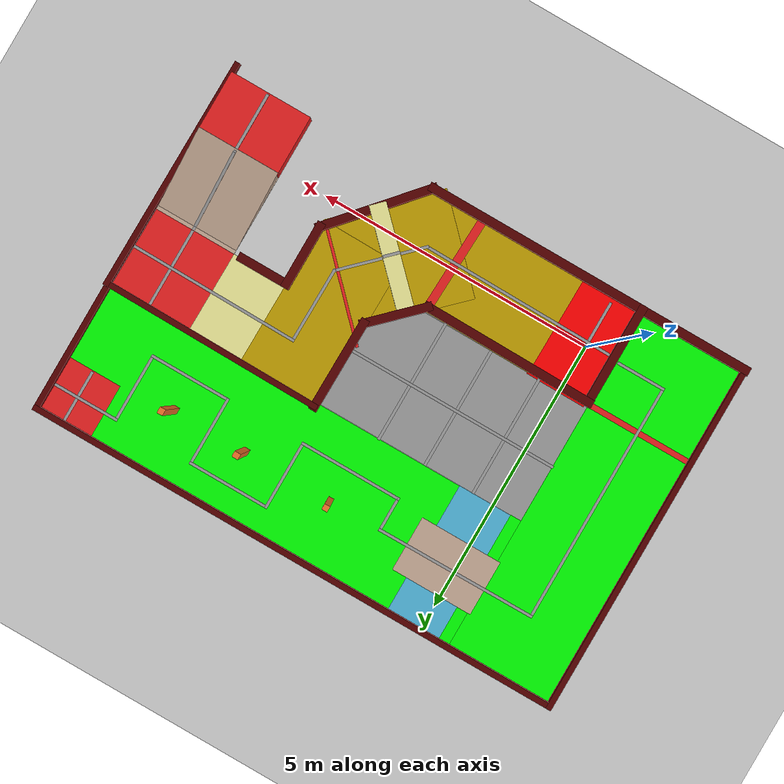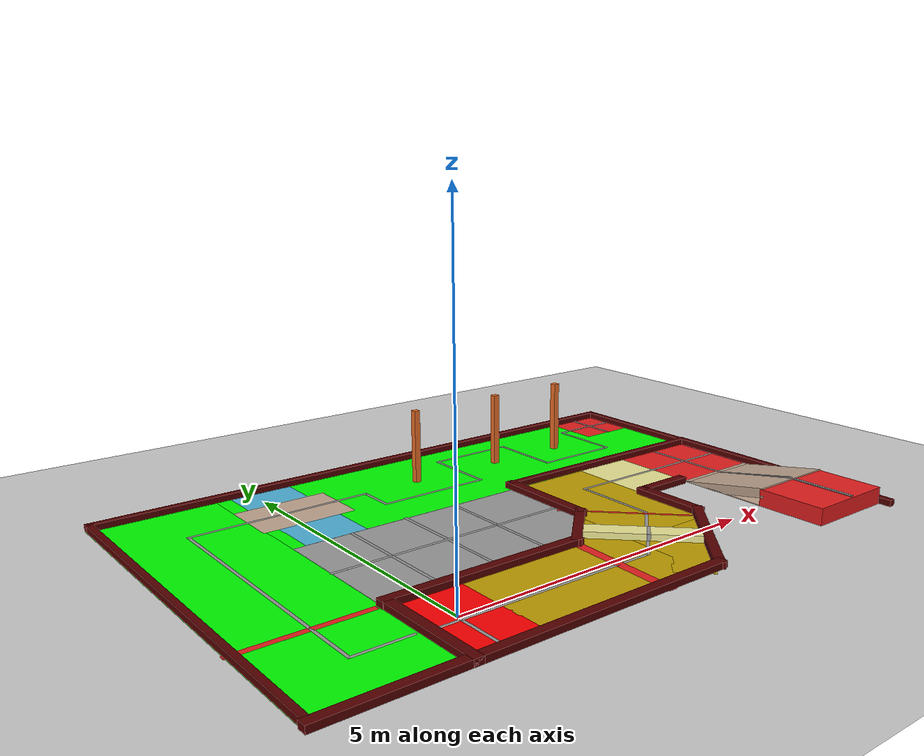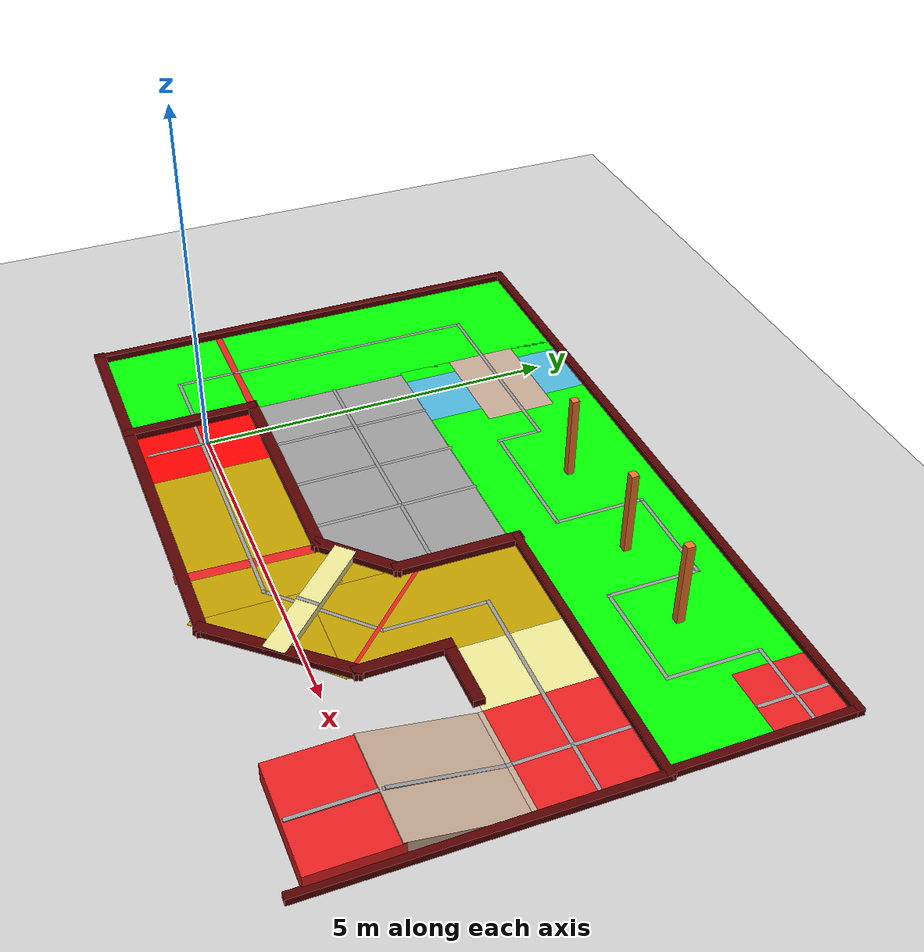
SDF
<sdf version="1.6">
 <world name="default">
  <light name="sun" type="directional">
   <pose>0 0 10 0 -0 0</pose>
   <diffuse>0.8 0.8 0.8 1</diffuse>
   <specular>0.1 0.1 0.1 1</specular>
   <attenuation>
    <range>1000</range>
    <constant>0.9</constant>
    <linear>0.01</linear>
    <quadratic>0.001</quadratic>
   </attenuation>
   <direction>-0.5 0.5 -1</direction>
  </light>
  <model name="ground_plane">
   <static>1</static>
   <link name="link">
    <collision name="collision">
     <geometry><plane><normal>0 0 1</normal><size>100 100</size></plane></geometry>
     <surface><friction><ode><mu>100</mu><mu2>50</mu2></ode></friction></surface>
    </collision>
    <visual name="visual">
     <cast_shadows>0</cast_shadows>
     <geometry><plane><normal>0 0 1</normal><size>100 100</size></plane></geometry>
     <material>
      <script><uri>file://media/materials/scripts/gazebo.material</uri><name>Gazebo/Grey</name></script>
     </material>
    </visual>
   </link>
  </model>
  <gravity>0 0 -9.8</gravity>
  <magnetic_field>6e-06 2.3e-05 -4.2e-05</magnetic_field>
  <atmosphere type="adiabatic"/>
  <physics name="default_physics" default="0" type="ode">
   <max_step_size>0.001</max_step_size>
   <real_time_factor>1</real_time_factor>
   <real_time_update_rate>1000</real_time_update_rate>
  </physics>
  <scene><ambient>0.4 0.4 0.4 1</ambient><background>0.7 0.7 0.7 1</background><shadows>1</shadows></scene>
  <spherical_coordinates>
   <surface_model>EARTH_WGS84</surface_model>
   <latitude_deg>0</latitude_deg>
   <longitude_deg>0</longitude_deg>
   <elevation>0</elevation>
   <heading_deg>0</heading_deg>
  </spherical_coordinates>
  <model name="MR2way">
   <pose>3.42393 1.03579 0 0 0 -1.58007</pose>
   <link name="Wall_0">
    <collision name="Wall_0_Collision">
     <geometry><box><size>4.3 0.1 0.101</size></box></geometry>
     <pose>0 0 0.0505 0 -0 0</pose>
    </collision>
    <visual name="Wall_0_Visual">
     <pose>0 0 0.0505 0 -0 0</pose>
     <geometry><box><size>4.3 0.1 0.101</size></box></geometry>
     <material>
      <script><uri>file://media/materials/scripts/gazebo.material</uri><name>Gazebo/Grey</name></script>
      <ambient>0.333333 0 0 1</ambient>
     </material>
    </visual>
    <pose>0.0125 3.9515 0 0 -0 0</pose>
   </link>
   <link name="Wall_11">
    <collision name="Wall_11_Collision">
     <geometry><box><size>1.45 1 0.001</size></box></geometry>
     <pose>0 0 0.0005 0 -0 0</pose>
    </collision>
    <visual name="Wall_11_Visual">
     <pose>0 0 0.0005 0 -0 0</pose>
     <geometry><box><size>1.45 1 0.001</size></box></geometry>
     <material>
      <script><uri>file://media/materials/scripts/gazebo.material</uri><name>Gazebo/Grey</name></script>
      <ambient>0.917647 0.901961 0.584314 1</ambient>
     </material>
    </visual>
    <pose>-1.3185 1.8985 0 0 -0 0</pose>
   </link>
   <link name="Wall_13">
    <collision name="Wall_13_Collision">
     <geometry><box><size>2.7 1.5 0.001</size></box></geometry>
     <pose>0 0 0.0005 0 -0 0</pose>
    </collision>
    <visual name="Wall_13_Visual">
     <pose>0 0 0.0005 0 -0 0</pose>
     <geometry><box><size>2.7 1.5 0.001</size></box></geometry>
     <material>
      <script><uri>file://media/materials/scripts/gazebo.material</uri><name>Gazebo/Grey</name></script>
      <ambient>0.74902 0.615686 0 1</ambient>
     </material>
    </visual>
    <pose>-0.688656 0.6565 0 0 -0 3.14159</pose>
   </link>
   <link name="Wall_15">
    <collision name="Wall_15_Collision">
     <geometry><box><size>2.12062 1.9 0.001</size></box></geometry>
     <pose>0 0 0.0005 0 -0 0</pose>
    </collision>
    <visual name="Wall_15_Visual">
     <pose>0 0 0.0005 0 -0 0</pose>
     <geometry><box><size>2.12062 1.9 0.001</size></box></geometry>
     <material>
      <script><uri>file://media/materials/scripts/gazebo.material</uri><name>Gazebo/Grey</name></script>
      <ambient>0.74902 0.615686 0 1</ambient>
     </material>
    </visual>
    <pose>0.73611 -0.0095 0 0 0 -0.785398</pose>
   </link>
   <link name="Wall_21">
    <collision name="Wall_21_Collision">
     <geometry><box><size>2.7 1.9 0.001</size></box></geometry>
     <pose>0 0 0.0005 0 -0 0</pose>
    </collision>
    <visual name="Wall_21_Visual">
     <pose>0 0 0.0005 0 -0 0</pose>
     <geometry><box><size>2.7 1.9 0.001</size></box></geometry>
     <material>
      <script><uri>file://media/materials/scripts/gazebo.material</uri><name>Gazebo/Grey</name></script>
      <ambient>0.74902 0.615686 0 1</ambient>
     </material>
    </visual>
    <pose>1.15609 -1.47421 0 0 0 -1.5708</pose>
   </link>
   <link name="Wall_23">
    <collision name="Wall_23_Collision">
     <geometry><box><size>1.9 1.1 0.001</size></box></geometry>
     <pose>0 0 0.0005 0 -0 0</pose>
    </collision>
    <visual name="Wall_23_Visual">
     <pose>0 0 0.0005 0 -0 0</pose>
     <geometry><box><size>1.9 1.1 0.001</size></box></geometry>
     <material>
      <script><uri>file://media/materials/scripts/gazebo.material</uri><name>Gazebo/Grey</name></script>
      <ambient>1 0 0 1</ambient>
     </material>
    </visual>
    <pose>1.1355 -3.3545 0 0 -0 3.14159</pose>
   </link>
   <link name="Wall_26">
    <collision name="Wall_26_Collision">
     <geometry><box><size>1.89948 0.2 0.001</size></box></geometry>
     <pose>0 0 0.0005 0 -0 0</pose>
    </collision>
    <visual name="Wall_26_Visual">
     <pose>0 0 0.0005 0 -0 0</pose>
     <geometry><box><size>1.89948 0.2 0.001</size></box></geometry>
     <material>
      <script><uri>file://media/materials/scripts/gazebo.material</uri><name>Gazebo/Grey</name></script>
      <ambient>0.917647 0.980392 0.584314 1</ambient>
     </material>
    </visual>
    <pose>0.658481 0.09087 0 0 -0 0.785398</pose>
   </link>
   <link name="Wall_28">
    <collision name="Wall_28_Collision">
     <geometry><box><size>3.15 0.05 0.0012</size></box></geometry>
     <pose>0 0 0.0005 0 -0 0</pose>
    </collision>
    <visual name="Wall_28_Visual">
     <pose>0 0 0.0005 0 -0 0</pose>
     <geometry><box><size>3.15 0.05 0.0012</size></box></geometry>
     <material>
      <script><uri>file://media/materials/scripts/gazebo.material</uri><name>Gazebo/Grey</name></script>
      <ambient>1 1 1 1</ambient>
     </material>
    </visual>
    <pose>-1.3295 2.3745 0 0 0 -1.5708</pose>
   </link>
   <link name="Wall_30">
    <collision name="Wall_30_Collision">
     <geometry><box><size>1.4 0.05 0.0011</size></box></geometry>
     <pose>0 0 0.0005 0 -0 0</pose>
    </collision>
    <visual name="Wall_30_Visual">
     <pose>0 0 0.0005 0 -0 0</pose>
     <geometry><box><size>1.4 0.05 0.0011</size></box></geometry>
     <material>
      <script><uri>file://media/materials/scripts/gazebo.material</uri><name>Gazebo/Grey</name></script>
      <ambient>1 1 1 1</ambient>
     </material>
    </visual>
    <pose>-0.6545 0.8245 0 0 -0 0</pose>
   </link>
   <link name="Wall_31">
    <collision name="Wall_31_Collision">
     <geometry><box><size>1.65 0.05 0.0011</size></box></geometry>
     <pose>0 0 0.0005 0 -0 0</pose>
    </collision>
    <visual name="Wall_31_Visual">
     <pose>0 0 0.0005 0 -0 0</pose>
     <geometry><box><size>1.65 0.05 0.0011</size></box></geometry>
     <material>
      <script><uri>file://media/materials/scripts/gazebo.material</uri><name>Gazebo/Grey</name></script>
      <ambient>1 1 1 1</ambient>
     </material>
    </visual>
    <pose>0.586 0.259 0 0 0 -0.785398</pose>
   </link>
   <link name="Wall_32">
    <collision name="Wall_32_Collision">
     <geometry><box><size>3.65 0.05 0.0011</size></box></geometry>
     <pose>0 0 0.0005 0 -0 0</pose>
    </collision>
    <visual name="Wall_32_Visual">
     <pose>0 0 0.0005 0 -0 0</pose>
     <geometry><box><size>3.65 0.05 0.0011</size></box></geometry>
     <material>
      <script><uri>file://media/materials/scripts/gazebo.material</uri><name>Gazebo/Grey</name></script>
      <ambient>1 1 1 1</ambient>
     </material>
    </visual>
    <pose>1.1515 -2.1065 0 0 0 -1.5708</pose>
   </link>
   <link name="Wall_34">
    <collision name="Wall_34_Collision">
     <geometry><box><size>2.15 0.05 0.0011</size></box></geometry>
     <pose>0 0 0.0005 0 -0 0</pose>
    </collision>
    <visual name="Wall_34_Visual">
     <pose>0 0 0.0005 0 -0 0</pose>
     <geometry><box><size>2.15 0.05 0.0011</size></box></geometry>
     <material>
      <script><uri>file://media/materials/scripts/gazebo.material</uri><name>Gazebo/Grey</name></script>
      <ambient>0.901961 0.121569 0.121569 1</ambient>
     </material>
    </visual>
    <pose>-0.124 0.602 0 0 -0 0.785398</pose>
   </link>
   <link name="Wall_37">
    <collision name="Wall_37_Collision">
     <geometry><box><size>1.91295 0.15 0.0011</size></box></geometry>
     <pose>0 0 0.0005 0 -0 0</pose>
    </collision>
    <visual name="Wall_37_Visual">
     <pose>0 0 0.0005 0 -0 0</pose>
     <geometry><box><size>1.91295 0.15 0.0011</size></box></geometry>
     <material>
      <script><uri>file://media/materials/scripts/gazebo.material</uri><name>Gazebo/Grey</name></script>
      <ambient>0.901961 0.121569 0.121569 1</ambient>
     </material>
    </visual>
    <pose>1.1715 -0.8525 0 0 0 -0.029503</pose>
   </link>
   <link name="Wall_39">
    <collision name="Wall_39_Collision">
     <geometry><box><size>1.75 0.15 0.1</size></box></geometry>
     <pose>0 0 0.05 0 -0 0</pose>
    </collision>
    <visual name="Wall_39_Visual">
     <pose>0 0 0.05 0 -0 0</pose>
     <geometry><box><size>1.75 0.15 0.1</size></box></geometry>
     <material>
      <script><uri>file://media/materials/scripts/gazebo.material</uri><name>Gazebo/Grey</name></script>
      <ambient>0.333333 0 0 1</ambient>
     </material>
    </visual>
    <pose>-1.2875 -0.0485 0 0 -0 0</pose>
   </link>
   <link name="Wall_40">
    <collision name="Wall_40_Collision">
     <geometry><box><size>1.25 0.15 0.1</size></box></geometry>
     <pose>0 0 0.05 0 -0 0</pose>
    </collision>
    <visual name="Wall_40_Visual">
     <pose>0 0 0.05 0 -0 0</pose>
     <geometry><box><size>1.25 0.15 0.1</size></box></geometry>
     <material>
      <script><uri>file://media/materials/scripts/gazebo.material</uri><name>Gazebo/Grey</name></script>
      <ambient>0.333333 0 0 1</ambient>
     </material>
    </visual>
    <pose>-0.0985 -0.4375 0 0 0 -0.785398</pose>
   </link>
   <link name="Wall_41">
    <collision name="Wall_41_Collision">
     <geometry><box><size>3.25 0.15 0.1</size></box></geometry>
     <pose>0 0 0.05 0 -0 0</pose>
    </collision>
    <visual name="Wall_41_Visual">
     <pose>0 0 0.05 0 -0 0</pose>
     <geometry><box><size>3.25 0.15 0.1</size></box></geometry>
     <material>
      <script><uri>file://media/materials/scripts/gazebo.material</uri><name>Gazebo/Grey</name></script>
      <ambient>0.333333 0 0 1</ambient>
     </material>
    </visual>
    <pose>0.2905 -2.3765 0 0 0 -1.5708</pose>
   </link>
   <link name="Wall_5">
    <collision name="Wall_5_Collision">
     <geometry><box><size>4.1 0.1 0.101</size></box></geometry>
     <pose>0 0 0.0505 0 -0 0</pose>
    </collision>
    <visual name="Wall_5_Visual">
     <pose>0 0 0.0505 0 -0 0</pose>
     <geometry><box><size>4.1 0.1 0.101</size></box></geometry>
     <material>
      <script><uri>file://media/materials/scripts/gazebo.material</uri><name>Gazebo/Grey</name></script>
      <ambient>0.333333 0 0 1</ambient>
     </material>
    </visual>
    <pose>-2.0875 1.9515 0 0 0 -1.5708</pose>
   </link>
   <link name="Wall_9">
    <collision name="Wall_9_Collision">
     <geometry><box><size>1.5 1.45 0.001</size></box></geometry>
     <pose>0 0 0.0005 0 -0 0</pose>
    </collision>
    <visual name="Wall_9_Visual">
     <pose>0 0 0.0005 0 -0 0</pose>
     <geometry><box><size>1.5 1.45 0.001</size></box></geometry>
     <material>
      <script><uri>file://media/materials/scripts/gazebo.material</uri><name>Gazebo/Grey</name></script>
      <ambient>0.901961 0.121569 0.121569 1</ambient>
     </material>
    </visual>
    <pose>-1.3235 3.1435 0 0 -0 1.5708</pose>
   </link>
   <static>1</static>
  </model>
  <model name="MR2area">
   <pose>3.06069 1.00816 0 0 -0 0</pose>
   <link name="Wall_0">
    <collision name="Wall_0_Collision">
     <geometry><box><size>1.9 0.15 0.1</size></box></geometry>
     <pose>0 0 0.05 0 -0 0</pose>
    </collision>
    <visual name="Wall_0_Visual">
     <pose>0 0 0.05 0 -0 0</pose>
     <geometry><box><size>1.9 0.15 0.1</size></box></geometry>
     <material>
      <script><uri>file://media/materials/scripts/gazebo.material</uri><name>Gazebo/Grey</name></script>
      <ambient>0.333333 0 0 1</ambient>
     </material>
    </visual>
    <pose>-3.55775 -1.12559 0 0 0 -1.5708</pose>
   </link>
   <link name="Wall_12">
    <collision name="Wall_12_Collision">
     <geometry><box><size>1.249 0.15 0.1</size></box></geometry>
     <pose>0 0 0.05 0 -0 0</pose>
    </collision>
    <visual name="Wall_12_Visual">
     <pose>0 0 0.05 0 -0 0</pose>
     <geometry><box><size>1.249 0.15 0.1</size></box></geometry>
     <material>
      <script><uri>file://media/materials/scripts/gazebo.material</uri><name>Gazebo/Grey</name></script>
      <ambient>0.333333 0 0 1</ambient>
     </material>
    </visual>
    <pose>1.75425 0.045913 0 0 -0 1.5708</pose>
   </link>
   <link name="Wall_13">
    <collision name="Wall_13_Collision">
     <geometry><box><size>1 0.15 0.1</size></box></geometry>
     <pose>0 0 0.05 0 -0 0</pose>
    </collision>
    <visual name="Wall_13_Visual">
     <pose>0 0 0.05 0 -0 0</pose>
     <geometry><box><size>1 0.15 0.1</size></box></geometry>
     <material>
      <script><uri>file://media/materials/scripts/gazebo.material</uri><name>Gazebo/Grey</name></script>
      <ambient>0.333333 0 0 1</ambient>
     </material>
    </visual>
    <pose>2.17925 0.595413 0 0 -0 0</pose>
   </link>
   <link name="Wall_15">
    <collision name="Wall_15_Collision">
     <geometry><box><size>0.3 0.05 0.1</size></box></geometry>
     <pose>0 0 0.052 0 -0 0</pose>
    </collision>
    <visual name="Wall_15_Visual">
     <pose>0 0 0.052 0 -0 0</pose>
     <geometry><box><size>0.3 0.05 0.1</size></box></geometry>
     <material>
      <script><uri>file://media/materials/scripts/gazebo.material</uri><name>Gazebo/Grey</name></script>
      <ambient>1 1 1 1</ambient>
     </material>
    </visual>
    <pose>0.492717 -0.70112 0 0 0 -2.35619</pose>
   </link>
   <link name="Wall_17">
    <collision name="Wall_17_Collision">
     <geometry><box><size>1.5 0.05 0.0011</size></box></geometry>
     <pose>0 0 0.0005 0 -0 0</pose>
    </collision>
    <visual name="Wall_17_Visual">
     <pose>0 0 0.0005 0 -0 0</pose>
     <geometry><box><size>1.5 0.05 0.0011</size></box></geometry>
     <material>
      <script><uri>file://media/materials/scripts/gazebo.material</uri><name>Gazebo/Grey</name></script>
      <ambient>1 1 1 1</ambient>
     </material>
    </visual>
    <pose>-3.06575 -1.10459 0 0 0 -1.5708</pose>
   </link>
   <link name="Wall_19">
    <collision name="Wall_19_Collision">
     <geometry><box><size>1.5 0.05 0.0012</size></box></geometry>
     <pose>0 0 0.0005 0 -0 0</pose>
    </collision>
    <visual name="Wall_19_Visual">
     <pose>0 0 0.0005 0 -0 0</pose>
     <geometry><box><size>1.5 0.05 0.0012</size></box></geometry>
     <material>
      <script><uri>file://media/materials/scripts/gazebo.material</uri><name>Gazebo/Grey</name></script>
      <ambient>1 1 1 1</ambient>
     </material>
    </visual>
    <pose>3.55775 1.35641 0 0 0 -1.5708</pose>
   </link>
   <link name="Wall_2">
    <collision name="Wall_2_Collision">
     <geometry><box><size>1.9 0.3 0.1</size></box></geometry>
     <pose>0 0 0.05 0 -0 0</pose>
    </collision>
    <visual name="Wall_2_Visual">
     <pose>0 0 0.05 0 -0 0</pose>
     <geometry><box><size>1.9 0.3 0.1</size></box></geometry>
     <material>
      <script><uri>file://media/materials/scripts/gazebo.material</uri><name>Gazebo/Grey</name></script>
      <ambient>0.917647 0.901961 0.584314 1</ambient>
     </material>
    </visual>
    <pose>0.447935 -0.646272 0 0 0 -0.785398</pose>
   </link>
   <link name="Wall_4">
    <collision name="Wall_4_Collision">
     <geometry><box><size>4.154 0.15 0.1</size></box></geometry>
     <pose>0 0 0.05 0 -0 0</pose>
    </collision>
    <visual name="Wall_4_Visual">
     <pose>0 0 0.05 0 -0 0</pose>
     <geometry><box><size>4.154 0.15 0.1</size></box></geometry>
     <material>
      <script><uri>file://media/materials/scripts/gazebo.material</uri><name>Gazebo/Grey</name></script>
      <ambient>0.333333 0 0 1</ambient>
     </material>
    </visual>
    <pose>-1.55575 -2.00059 0 0 -0 0</pose>
   </link>
   <link name="Wall_5">
    <collision name="Wall_5_Collision">
     <geometry><box><size>2.13793 0.15 0.1</size></box></geometry>
     <pose>0 0 0.05 0 -0 0</pose>
    </collision>
    <visual name="Wall_5_Visual">
     <pose>0 0 0.05 0 -0 0</pose>
     <geometry><box><size>2.13793 0.15 0.1</size></box></geometry>
     <material>
      <script><uri>file://media/materials/scripts/gazebo.material</uri><name>Gazebo/Grey</name></script>
      <ambient>0.333333 0 0 1</ambient>
     </material>
    </visual>
    <pose>1.10025 -1.25209 0 0 -0 0.852676</pose>
   </link>
   <static>1</static>
  </model>
  <model name="mountion">
   <pose>7.32704 0.333271 0.058375 0.00209 -1.57064 -0.002094</pose>
   <link name="Wall_42">
    <collision name="Wall_42_Collision">
     <geometry><box><size>1.099 0.4 1.5</size></box></geometry>
     <pose>0 0 0.75 0 -0 0</pose>
    </collision>
    <visual name="Wall_42_Visual">
     <pose>0 0 0.75 0 -0 0</pose>
     <geometry><box><size>1.099 0.4 1.5</size></box></geometry>
     <material>
      <script><uri>file://media/materials/scripts/gazebo.material</uri><name>Gazebo/Grey</name></script>
      <ambient>0.901961 0.121569 0.121569 1</ambient>
     </material>
    </visual>
    <pose>-0.0035 -0.740259 0 0 0 -1.5708</pose>
   </link>
   <link name="Wall_49">
    <collision name="Wall_49_Collision">
     <geometry><box><size>1.49989 0.15 1.5</size></box></geometry>
     <pose>0 0 0.75 0 -0 0</pose>
    </collision>
    <visual name="Wall_49_Visual">
     <pose>0 0 0.75 0 -0 0</pose>
     <geometry><box><size>1.49989 0.15 1.5</size></box></geometry>
     <material>
      <script><uri>file://media/materials/scripts/gazebo.material</uri><name>Gazebo/Grey</name></script>
      <ambient>0.756863 0.65098 0.568627 1</ambient>
     </material>
    </visual>
    <pose>-0.1325 0.527241 0 0 0 -1.57672</pose>
   </link>
   <link name="Wall_52">
    <collision name="Wall_52_Collision">
     <geometry><box><size>1.54685 0.15 1.5</size></box></geometry>
     <pose>0 0 0.75 0 -0 0</pose>
    </collision>
    <visual name="Wall_52_Visual">
     <pose>0 0 0.75 0 -0 0</pose>
     <geometry><box><size>1.54685 0.15 1.5</size></box></geometry>
     <material>
      <script><uri>file://media/materials/scripts/gazebo.material</uri><name>Gazebo/Grey</name></script>
      <ambient>0.756863 0.65098 0.568627 1</ambient>
     </material>
    </visual>
    <pose>0 0.515741 0 0 -0 1.75584</pose>
   </link>
   <static>1</static>
  </model>
  <model name="MR1area">
   <pose>2.43102 2.228 0 0 -0 0</pose>
   <link name="Wall_0">
    <collision name="Wall_0_Collision">
     <geometry><box><size>2 0.15 0.1</size></box></geometry>
     <pose>0 0 0.05 0 -0 0</pose>
    </collision>
    <visual name="Wall_0_Visual">
     <pose>0 0 0.05 0 -0 0</pose>
     <geometry><box><size>2 0.15 0.1</size></box></geometry>
     <material>
      <script><uri>file://media/materials/scripts/gazebo.material</uri><name>Gazebo/Grey</name></script>
      <ambient>0.333333 0 0 1</ambient>
     </material>
    </visual>
    <pose>-3.98602 -3.218 0 0 -0 0</pose>
   </link>
   <link name="Wall_10">
    <collision name="Wall_10_Collision">
     <geometry><box><size>6.561 0.1 0.1</size></box></geometry>
     <pose>0 0 0.05 0 -0 0</pose>
    </collision>
    <visual name="Wall_10_Visual">
     <pose>0 0 0.05 0 -0 0</pose>
     <geometry><box><size>6.561 0.1 0.1</size></box></geometry>
     <material>
      <script><uri>file://media/materials/scripts/gazebo.material</uri><name>Gazebo/Grey</name></script>
      <ambient>0.333333 0 0 1</ambient>
     </material>
    </visual>
    <pose>-4.91102 0.0125 0 0 -0 1.5708</pose>
   </link>
   <link name="Wall_12">
    <collision name="Wall_12_Collision">
     <geometry><box><size>9.94706 0.1 0.1</size></box></geometry>
     <pose>0 0 0.05 0 -0 0</pose>
    </collision>
    <visual name="Wall_12_Visual">
     <pose>0 0 0.05 0 -0 0</pose>
     <geometry><box><size>9.94706 0.1 0.1</size></box></geometry>
     <material>
      <script><uri>file://media/materials/scripts/gazebo.material</uri><name>Gazebo/Grey</name></script>
      <ambient>0.333333 0 0 1</ambient>
     </material>
    </visual>
    <pose>0.012484 3.243 0 0 -0 0</pose>
   </link>
   <link name="Wall_13">
    <collision name="Wall_13_Collision">
     <geometry><box><size>2.379 0.1 0.1</size></box></geometry>
     <pose>0 0 0.05 0 -0 0</pose>
    </collision>
    <visual name="Wall_13_Visual">
     <pose>0 0 0.05 0 -0 0</pose>
     <geometry><box><size>2.379 0.1 0.1</size></box></geometry>
     <material>
      <script><uri>file://media/materials/scripts/gazebo.material</uri><name>Gazebo/Grey</name></script>
      <ambient>0.333333 0 0 1</ambient>
     </material>
    </visual>
    <pose>4.93598 2.1035 0 0 0 -1.5708</pose>
   </link>
   <link name="Wall_15">
    <collision name="Wall_15_Collision">
     <geometry><box><size>1.5 1 0.0011</size></box></geometry>
     <pose>0 0 0.0005 0 -0 0</pose>
    </collision>
    <visual name="Wall_15_Visual">
     <pose>0 0 0.0005 0 -0 0</pose>
     <geometry><box><size>1.5 1 0.0011</size></box></geometry>
     <material>
      <script><uri>file://media/materials/scripts/gazebo.material</uri><name>Gazebo/Grey</name></script>
      <ambient>0.756863 0.65098 0.568627 1</ambient>
     </material>
    </visual>
    <pose>-2.2686 2.09358 0 0 -0 3.14159</pose>
   </link>
   <link name="Wall_17">
    <collision name="Wall_17_Collision">
     <geometry><box><size>0.9 0.05 0.0011</size></box></geometry>
     <pose>0 0 0.0005 0 -0 0</pose>
    </collision>
    <visual name="Wall_17_Visual">
     <pose>0 0 0.0005 0 -0 0</pose>
     <geometry><box><size>0.9 0.05 0.0011</size></box></geometry>
     <material>
      <script><uri>file://media/materials/scripts/gazebo.material</uri><name>Gazebo/Grey</name></script>
      <ambient>1 1 1 1</ambient>
     </material>
    </visual>
    <pose>-3.48402 -2.267 0 0 -0 3.14159</pose>
   </link>
   <link name="Wall_19">
    <collision name="Wall_19_Collision">
     <geometry><box><size>4.427 0.05 0.0011</size></box></geometry>
     <pose>0 0 0.0005 0 -0 0</pose>
    </collision>
    <visual name="Wall_19_Visual">
     <pose>0 0 0.0005 0 -0 0</pose>
     <geometry><box><size>4.427 0.05 0.0011</size></box></geometry>
     <material>
      <script><uri>file://media/materials/scripts/gazebo.material</uri><name>Gazebo/Grey</name></script>
      <ambient>1 1 1 1</ambient>
     </material>
    </visual>
    <pose>-3.90902 -0.0785 0 0 -0 1.5708</pose>
   </link>
   <link name="Wall_2">
    <collision name="Wall_2_Collision">
     <geometry><box><size>6.45 2 0.001</size></box></geometry>
     <pose>0 0 0.0005 0 -0 0</pose>
    </collision>
    <visual name="Wall_2_Visual">
     <pose>0 0 0.0005 0 -0 0</pose>
     <geometry><box><size>6.45 2 0.001</size></box></geometry>
     <material>
      <script><uri>file://media/materials/scripts/gazebo.material</uri><name>Gazebo/Grey</name></script>
      <ambient>0 1 0 1</ambient>
     </material>
    </visual>
    <pose>-3.96546 0.022888 0 0 -0 1.5708</pose>
   </link>
   <link name="Wall_20">
    <collision name="Wall_20_Collision">
     <geometry><box><size>2.9407 0.05 0.00115</size></box></geometry>
     <pose>0 0 0.0005 0 -0 0</pose>
    </collision>
    <visual name="Wall_20_Visual">
     <pose>0 0 0.0005 0 -0 0</pose>
     <geometry><box><size>2.9407 0.05 0.00115</size></box></geometry>
     <material>
      <script><uri>file://media/materials/scripts/gazebo.material</uri><name>Gazebo/Grey</name></script>
      <ambient>1 1 1 1</ambient>
     </material>
    </visual>
    <pose>-2.46052 2.12 0 0 -0 0.006904</pose>
   </link>
   <link name="Wall_22">
    <collision name="Wall_22_Collision">
     <geometry><box><size>0.1 0.1 1.2</size></box></geometry>
     <pose>0 0 0.6 0 -0 0</pose>
    </collision>
    <visual name="Wall_22_Visual">
     <pose>0 0 0.6 0 -0 0</pose>
     <geometry><box><size>0.1 0.1 1.2</size></box></geometry>
     <material>
      <script><uri>file://media/materials/scripts/gazebo.material</uri><name>Gazebo/Grey</name></script>
      <ambient>0.941176 0.447059 0.160784 1</ambient>
     </material>
    </visual>
    <pose>-0.045016 2.121 0 0 -0 0</pose>
   </link>
   <link name="Wall_4">
    <collision name="Wall_4_Collision">
     <geometry><box><size>6.6997 2.45 0.001</size></box></geometry>
     <pose>0 0 0.0005 0 -0 0</pose>
    </collision>
    <visual name="Wall_4_Visual">
     <pose>0 0 0.0005 0 -0 0</pose>
     <geometry><box><size>6.6997 2.45 0.001</size></box></geometry>
     <material>
      <script><uri>file://media/materials/scripts/gazebo.material</uri><name>Gazebo/Grey</name></script>
      <ambient>0 1 0 1</ambient>
     </material>
    </visual>
    <pose>1.56098 2.055 0 0 -0 0</pose>
   </link>
   <link name="Wall_50">
    <collision name="Wall_50_Collision">
     <geometry><box><size>0.11 0.1 1.2</size></box></geometry>
     <pose>0 0 0.6 0 -0 0</pose>
    </collision>
    <visual name="Wall_50_Visual">
     <pose>0 0 0.6 0 -0 0</pose>
     <geometry><box><size>0.11 0.1 1.2</size></box></geometry>
     <material>
      <script><uri>file://media/materials/scripts/gazebo.material</uri><name>Gazebo/Grey</name></script>
      <ambient>0.941176 0.447059 0.160784 1</ambient>
     </material>
    </visual>
    <pose>2.93598 2.108 0 0 -0 1.5708</pose>
   </link>
   <link name="Wall_52">
    <collision name="Wall_52_Collision">
     <geometry><box><size>0.11 0.1 1.2</size></box></geometry>
     <pose>0 0 0.6 0 -0 0</pose>
    </collision>
    <visual name="Wall_52_Visual">
     <pose>0 0 0.6 0 -0 0</pose>
     <geometry><box><size>0.11 0.1 1.2</size></box></geometry>
     <material>
      <script><uri>file://media/materials/scripts/gazebo.material</uri><name>Gazebo/Grey</name></script>
      <ambient>0.941176 0.447059 0.160784 1</ambient>
     </material>
    </visual>
    <pose>1.57698 2.115 0 0 -0 0</pose>
   </link>
   <link name="Wall_54">
    <collision name="Wall_54_Collision">
     <geometry><box><size>1.96 0.1 0.0011</size></box></geometry>
     <pose>0 0 0.0005 0 -0 0</pose>
    </collision>
    <visual name="Wall_54_Visual">
     <pose>0 0 0.0005 0 -0 0</pose>
     <geometry><box><size>1.96 0.1 0.0011</size></box></geometry>
     <material>
      <script><uri>file://media/materials/scripts/gazebo.material</uri><name>Gazebo/Grey</name></script>
      <ambient>0.901961 0.121569 0.121569 1</ambient>
     </material>
    </visual>
    <pose>-4.00402 -1.426 0 0 -0 3.14159</pose>
   </link>
   <link name="Wall_56">
    <collision name="Wall_56_Collision">
     <geometry><box><size>0.65 0.05 0.0011</size></box></geometry>
     <pose>0 0 0.0005 0 -0 0</pose>
    </collision>
    <visual name="Wall_56_Visual">
     <pose>0 0 0.0005 0 -0 0</pose>
     <geometry><box><size>0.65 0.05 0.0011</size></box></geometry>
     <material>
      <script><uri>file://media/materials/scripts/gazebo.material</uri><name>Gazebo/Grey</name></script>
      <ambient>1 1 1 1</ambient>
     </material>
    </visual>
    <pose>-1.01202 1.83 0 0 0 -1.5708</pose>
   </link>
   <link name="Wall_57">
    <collision name="Wall_57_Collision">
     <geometry><box><size>1.88011 0.05 0.0011</size></box></geometry>
     <pose>0 0 0.0005 0 -0 0</pose>
    </collision>
    <visual name="Wall_57_Visual">
     <pose>0 0 0.0005 0 -0 0</pose>
     <geometry><box><size>1.88011 0.05 0.0011</size></box></geometry>
     <material>
      <script><uri>file://media/materials/scripts/gazebo.material</uri><name>Gazebo/Grey</name></script>
      <ambient>1 1 1 1</ambient>
     </material>
    </visual>
    <pose>-0.097016 1.53 0 0 -0 0</pose>
   </link>
   <link name="Wall_58">
    <collision name="Wall_58_Collision">
     <geometry><box><size>1.27254 0.05 0.0011</size></box></geometry>
     <pose>0 0 0.0005 0 -0 0</pose>
    </collision>
    <visual name="Wall_58_Visual">
     <pose>0 0 0.0005 0 -0 0</pose>
     <geometry><box><size>1.27254 0.05 0.0011</size></box></geometry>
     <material>
      <script><uri>file://media/materials/scripts/gazebo.material</uri><name>Gazebo/Grey</name></script>
      <ambient>1 1 1 1</ambient>
     </material>
    </visual>
    <pose>0.817984 2.1415 0 0 -0 1.5708</pose>
   </link>
   <link name="Wall_59">
    <collision name="Wall_59_Collision">
     <geometry><box><size>1.502 0.05 0.0011</size></box></geometry>
     <pose>0 0 0.0005 0 -0 0</pose>
    </collision>
    <visual name="Wall_59_Visual">
     <pose>0 0 0.0005 0 -0 0</pose>
     <geometry><box><size>1.502 0.05 0.0011</size></box></geometry>
     <material>
      <script><uri>file://media/materials/scripts/gazebo.material</uri><name>Gazebo/Grey</name></script>
      <ambient>1 1 1 1</ambient>
     </material>
    </visual>
    <pose>1.54398 2.753 0 0 -0 0</pose>
   </link>
   <link name="Wall_6">
    <collision name="Wall_6_Collision">
     <geometry><box><size>2.45 0.25 0.001</size></box></geometry>
     <pose>0 0 0.0005 0 -0 0</pose>
    </collision>
    <visual name="Wall_6_Visual">
     <pose>0 0 0.0005 0 -0 0</pose>
     <geometry><box><size>2.45 0.25 0.001</size></box></geometry>
     <material>
      <script><uri>file://media/materials/scripts/gazebo.material</uri><name>Gazebo/Grey</name></script>
      <ambient>0 1 0 1</ambient>
     </material>
    </visual>
    <pose>-2.89302 2.043 0 0 0 -1.5708</pose>
   </link>
   <link name="Wall_60">
    <collision name="Wall_60_Collision">
     <geometry><box><size>1.273 0.05 0.0011</size></box></geometry>
     <pose>0 0 0.0005 0 -0 0</pose>
    </collision>
    <visual name="Wall_60_Visual">
     <pose>0 0 0.0005 0 -0 0</pose>
     <geometry><box><size>1.273 0.05 0.0011</size></box></geometry>
     <material>
      <script><uri>file://media/materials/scripts/gazebo.material</uri><name>Gazebo/Grey</name></script>
      <ambient>1 1 1 1</ambient>
     </material>
    </visual>
    <pose>2.26998 2.1415 0 0 0 -1.5708</pose>
   </link>
   <link name="Wall_61">
    <collision name="Wall_61_Collision">
     <geometry><box><size>1.49056 0.05 0.0011</size></box></geometry>
     <pose>0 0 0.0005 0 -0 0</pose>
    </collision>
    <visual name="Wall_61_Visual">
     <pose>0 0 0.0005 0 -0 0</pose>
     <geometry><box><size>1.49056 0.05 0.0011</size></box></geometry>
     <material>
      <script><uri>file://media/materials/scripts/gazebo.material</uri><name>Gazebo/Grey</name></script>
      <ambient>1 1 1 1</ambient>
     </material>
    </visual>
    <pose>2.98998 1.53 0 0 -0 0</pose>
   </link>
   <link name="Wall_65">
    <collision name="Wall_65_Collision">
     <geometry><box><size>1.27369 0.05 0.0011</size></box></geometry>
     <pose>0 0 0.0005 0 -0 0</pose>
    </collision>
    <visual name="Wall_65_Visual">
     <pose>0 0 0.0005 0 -0 0</pose>
     <geometry><box><size>1.27369 0.05 0.0011</size></box></geometry>
     <material>
      <script><uri>file://media/materials/scripts/gazebo.material</uri><name>Gazebo/Grey</name></script>
      <ambient>1 1 1 1</ambient>
     </material>
    </visual>
    <pose>3.70998 2.1415 0 0 -0 1.5708</pose>
   </link>
   <link name="Wall_66">
    <collision name="Wall_66_Collision">
     <geometry><box><size>1.208 0.05 0.0012</size></box></geometry>
     <pose>0 0 0.0005 0 -0 0</pose>
    </collision>
    <visual name="Wall_66_Visual">
     <pose>0 0 0.0005 0 -0 0</pose>
     <geometry><box><size>1.208 0.05 0.0012</size></box></geometry>
     <material>
      <script><uri>file://media/materials/scripts/gazebo.material</uri><name>Gazebo/Grey</name></script>
      <ambient>1 1 1 1</ambient>
     </material>
    </visual>
    <pose>4.28898 2.753 0 0 -0 0</pose>
   </link>
   <link name="Wall_68">
    <collision name="Wall_68_Collision">
     <geometry><box><size>1.01 1 0.0011</size></box></geometry>
     <pose>0 0 0.0005 0 -0 0</pose>
    </collision>
    <visual name="Wall_68_Visual">
     <pose>0 0 0.0005 0 -0 0</pose>
     <geometry><box><size>1.01 1 0.0011</size></box></geometry>
     <material>
      <script><uri>file://media/materials/scripts/gazebo.material</uri><name>Gazebo/Grey</name></script>
      <ambient>0.901961 0.121569 0.121569 1</ambient>
     </material>
    </visual>
    <pose>4.42779 2.74269 0 0 0 -1.5708</pose>
   </link>
   <link name="Wall_70">
    <collision name="Wall_70_Collision">
     <geometry><box><size>1 0.05 0.0012</size></box></geometry>
     <pose>0 0 0.0005 0 -0 0</pose>
    </collision>
    <visual name="Wall_70_Visual">
     <pose>0 0 0.0005 0 -0 0</pose>
     <geometry><box><size>1 0.05 0.0012</size></box></geometry>
     <material>
      <script><uri>file://media/materials/scripts/gazebo.material</uri><name>Gazebo/Grey</name></script>
      <ambient>1 1 1 1</ambient>
     </material>
    </visual>
    <pose>4.44798 2.757 0 0 0 -1.5708</pose>
   </link>
   <link name="Wall_72">
    <collision name="Wall_72_Collision">
     <geometry><box><size>4 0.05 0.0011</size></box></geometry>
     <pose>0 0 0.0005 0 -0 0</pose>
    </collision>
    <visual name="Wall_72_Visual">
     <pose>0 0 0.0005 0 -0 0</pose>
     <geometry><box><size>4 0.05 0.0011</size></box></geometry>
     <material>
      <script><uri>file://media/materials/scripts/gazebo.material</uri><name>Gazebo/Grey</name></script>
      <ambient>1 1 1 1</ambient>
     </material>
    </visual>
    <pose>-0.983016 -0.22 0 0 -0 0</pose>
   </link>
   <link name="Wall_74">
    <collision name="Wall_74_Collision">
     <geometry><box><size>2.25 0.05 0.0011</size></box></geometry>
     <pose>0 0 0.0005 0 -0 0</pose>
    </collision>
    <visual name="Wall_74_Visual">
     <pose>0 0 0.0005 0 -0 0</pose>
     <geometry><box><size>2.25 0.05 0.0011</size></box></geometry>
     <material>
      <script><uri>file://media/materials/scripts/gazebo.material</uri><name>Gazebo/Grey</name></script>
      <ambient>1 1 1 1</ambient>
     </material>
    </visual>
    <pose>-2.04202 -0.295 0 0 0 -1.5708</pose>
   </link>
   <link name="Wall_76">
    <collision name="Wall_76_Collision">
     <geometry><box><size>2.25 0.05 0.0011</size></box></geometry>
     <pose>0 0 0.0005 0 -0 0</pose>
    </collision>
    <visual name="Wall_76_Visual">
     <pose>0 0 0.0005 0 -0 0</pose>
     <geometry><box><size>2.25 0.05 0.001</size></box></geometry>
     <material>
      <script><uri>file://media/materials/scripts/gazebo.material</uri><name>Gazebo/Grey</name></script>
      <ambient>1 1 1 1</ambient>
     </material>
    </visual>
    <pose>-1.11402 -0.264 0 0 0 -1.5708</pose>
   </link>
   <link name="Wall_78">
    <collision name="Wall_78_Collision">
     <geometry><box><size>2.25 0.05 0.0011</size></box></geometry>
     <pose>0 0 0.0005 0 -0 0</pose>
    </collision>
    <visual name="Wall_78_Visual">
     <pose>0 0 0.0005 0 -0 0</pose>
     <geometry><box><size>2.25 0.05 0.0011</size></box></geometry>
     <material>
      <script><uri>file://media/materials/scripts/gazebo.material</uri><name>Gazebo/Grey</name></script>
      <ambient>1 1 1 1</ambient>
     </material>
    </visual>
    <pose>-0.231893 -0.279469 0 0 0 -1.5708</pose>
   </link>
   <link name="Wall_8">
    <collision name="Wall_8_Collision">
     <geometry><box><size>2.45 1 0.001</size></box></geometry>
     <pose>0 0 0.0005 0 -0 0</pose>
    </collision>
    <visual name="Wall_8_Visual">
     <pose>0 0 0.0005 0 -0 0</pose>
     <geometry><box><size>2.45 1 0.001</size></box></geometry>
     <material>
      <script><uri>file://media/materials/scripts/gazebo.material</uri><name>Gazebo/Grey</name></script>
      <ambient>0.305882 0.698039 0.843137 1</ambient>
     </material>
    </visual>
    <pose>-2.28287 2.04973 0 0 0 -1.5708</pose>
   </link>
   <static>1</static>
  </model>
  <model name="mountionline_2">
   <pose>6.64454 0.344858 0.059685 0.002233 -1.57065 -0.002237</pose>
   <link name="Wall_15">
    <collision name="Wall_15_Collision">
     <geometry><box><size>1.1 0.4 0.05</size></box></geometry>
     <pose>0 0 0.025 0 -0 0</pose>
    </collision>
    <visual name="Wall_15_Visual">
     <pose>0 0 0.025 0 -0 0</pose>
     <geometry><box><size>1.1 0.4 0.05</size></box></geometry>
     <material>
      <script><uri>file://media/materials/scripts/gazebo.material</uri><name>Gazebo/Grey</name></script>
      <ambient>1 1 1 1</ambient>
     </material>
    </visual>
    <pose>0.008934 -0.726294 0 0 0 -1.5708</pose>
   </link>
   <link name="Wall_20">
    <collision name="Wall_20_Collision">
     <geometry><box><size>1.47901 0.15 0.05</size></box></geometry>
     <pose>0 0 0.025 0 -0 0</pose>
    </collision>
    <visual name="Wall_20_Visual">
     <pose>0 0 0.025 0 -0 0</pose>
     <geometry><box><size>1.47901 0.15 0.05</size></box></geometry>
     <material>
      <script><uri>file://media/materials/scripts/gazebo.material</uri><name>Gazebo/Grey</name></script>
      <ambient>1 1 1 1</ambient>
     </material>
    </visual>
    <pose>0 0.536245 0 0 -0 1.76539</pose>
   </link>
   <link name="Wall_21">
    <collision name="Wall_21_Collision">
     <geometry><box><size>1.5 0.15 0.05</size></box></geometry>
     <pose>0 0 0.025 0 -0 0</pose>
    </collision>
    <visual name="Wall_21_Visual">
     <pose>0 0 0.025 0 -0 0</pose>
     <geometry><box><size>1.5 0.15 0.05</size></box></geometry>
     <material>
      <script><uri>file://media/materials/scripts/gazebo.material</uri><name>Gazebo/Grey</name></script>
      <ambient>1 1 1 1</ambient>
     </material>
    </visual>
    <pose>-0.1285 0.513245 0 0 0 -1.5708</pose>
   </link>
   <static>1</static>
  </model>
  <model name="grd">
   <pose>1.46904 1.95074 0 0 -0 0</pose>
   <link name="Wall_0">
    <collision name="Wall_0_Collision">
     <geometry><box><size>4 2.2 0.0009</size></box></geometry>
     <pose>0 0 0.0005 0 -0 0</pose>
    </collision>
    <visual name="Wall_0_Visual">
     <pose>0 0 0.0005 0 -0 0</pose>
     <geometry><box><size>4 2.2 0.0009</size></box></geometry>
     <material>
      <script><uri>file://media/materials/scripts/gazebo.material</uri><name>Gazebo/Grey</name></script>
      <ambient>0.45098 0.439216 0.411765 1</ambient>
     </material>
    </visual>
   </link>
   <static>1</static>
  </model>
 </world>
</sdf>
